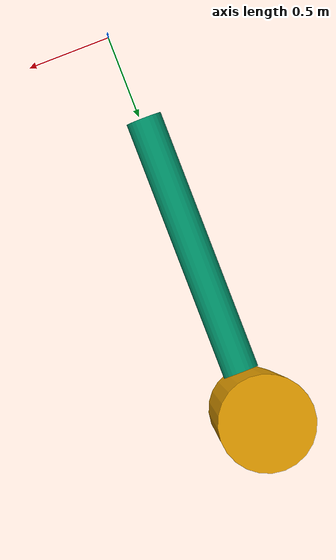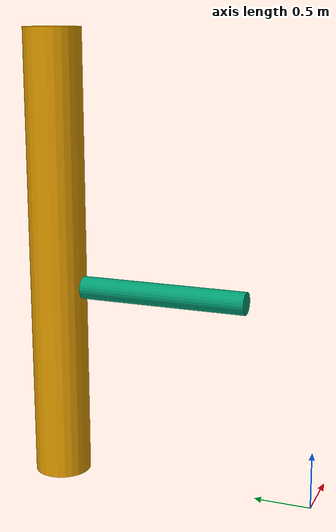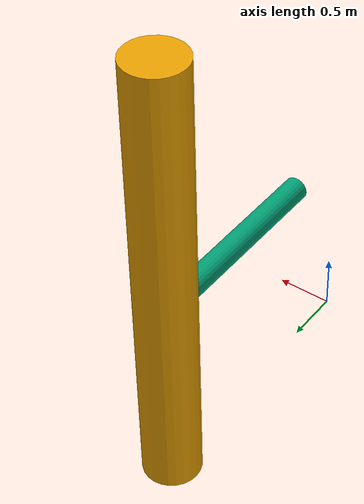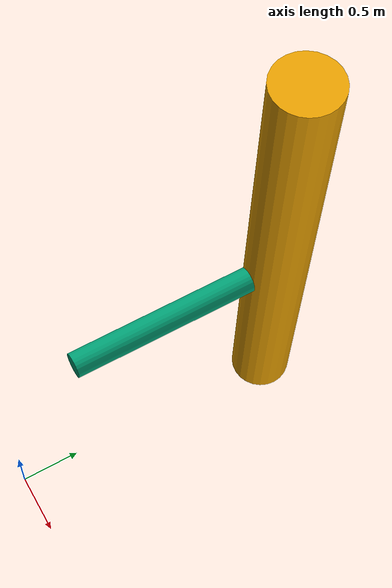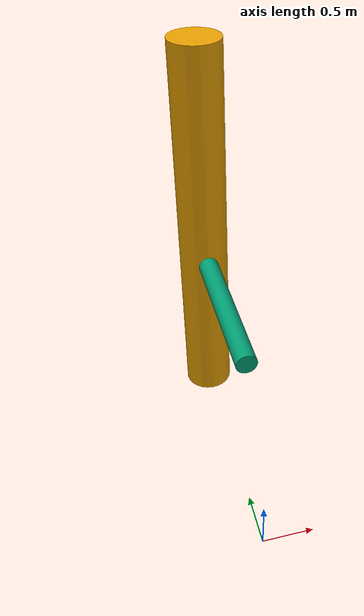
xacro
<?xml version="1.0" ?>
<robot name="vertical_obstacle" xmlns:xacro="http://www.ros.org/wiki/xacro">

  <!-- Include -->
  <xacro:include filename="$(find planar_structure)/urdf/obstacle_parameters.xacro" />
  <xacro:include filename="$(find planar_structure)/urdf/obstacle_link_joint.xacro" />

  <!-- Obstacle description -->
  <m_link_cyl name="${link_00_name}"
              origin_rpy="0 0 0" origin_xyz="0 2.35 2.0"
              mass="1000"
              ixx="800.0" ixy="0" ixz="0"
              iyy="800.0" iyz="0"
              izz="800.0"
	      radius="0.25"
	      length="4.0" />

  <m_joint name="branch_joint1" type="revolute"
           axis_xyz="1 0 0"
           origin_rpy="0 0 0" origin_xyz="0 2.1 1.75"
           parent="${link_00_name}" child="virtual_link"
           limit_e="1000" limit_l="-1.3" limit_u="1.3" limit_v="0.5"
           damping="0.01" friction="0.01" />

  <m_link_box name="virtual_link"
	      origin_rpy="0 0 0" origin_xyz="0 0 0"
              mass="0.0001"
              ixx="0.0001" ixy="0" ixz="0"
              iyy="0.0001" iyz="0"
              izz="0.0001"
              size="0.0 0.0 0.0" />

  <m_joint name="branch_joint2" type="revolute"
           axis_xyz="0 0 1"
           origin_rpy="0 0 0" origin_xyz="0 0 0"
           parent="virtual_link" child="${link_01_name}"
           limit_e="1000" limit_l="-0.3" limit_u="0.3" limit_v="0.5"
           damping="0.01" friction="0.01" />

  <m_link_cyl name="${link_01_name}"
              origin_rpy="1.57 0 0" origin_xyz="0 -0.75 0"
              mass="0.1"
              ixx="0.01" ixy="0" ixz="0"
              iyy="0.01" iyz="0"
              izz="0.01"
              radius="0.1"
	      length="1.5" />

  <!-- Macro for Torsional Joint Spring Plugin -->
  <gazebo>
    <plugin name="joint_spring1" filename="libjoint_torsional_spring_plugin.so">
      <kx>5</kx>
      <set_point>-0.045</set_point>
      <joint>branch_joint1</joint>
    </plugin>
  </gazebo>

  <gazebo>
    <plugin name="joint_spring2" filename="libjoint_torsional_spring_plugin.so">
      <kx>5</kx>
      <set_point>0.0</set_point>
      <joint>branch_joint2</joint>
    </plugin>
  </gazebo>

</robot>

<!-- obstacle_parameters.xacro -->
<robot xmlns:xacro="http://www.ros.org/wiki/xacro">
  <xacro:property name="link_00_name" value="wall" />
  <xacro:property name="link_01_name" value="branch" />
</robot>

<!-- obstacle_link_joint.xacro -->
<robot xmlns:xacro="http://www.ros.org/wiki/xacro">

  <xacro:macro name="m_joint" params="name type axis_xyz origin_rpy origin_xyz parent child limit_e limit_l limit_u limit_v damping friction">
    <joint name="${name}" type="${type}">
      <axis xyz="${axis_xyz}" />
      <limit effort="${limit_e}" lower="${limit_l}" upper="${limit_u}" velocity="${limit_v}" />
      <dynamics damping="${damping}" friction="${friction}" />
      <origin rpy="${origin_rpy}" xyz="${origin_xyz}" />
      <parent link="${parent}" />
      <child link="${child}" />
    </joint>
  </xacro:macro>

  <xacro:macro name="k_joint" params="name type axis_xyz origin_rpy origin_xyz parent child limit_e limit_l limit_u limit_v damping friction spring_k spring_ref">
    <joint name="${name}" type="${type}">
      <axis xyz="${axis_xyz}" />
      <limit effort="${limit_e}" lower="${limit_l}" upper="${limit_u}" velocity="${limit_v}" />
      <dynamics damping="${damping}" friction="${friction}" spring_reference="${spring_ref}" spring_stiffness="${spring_k}" />
      <origin rpy="${origin_rpy}" xyz="${origin_xyz}" />
      <parent link="${parent}" />
      <child link="${child}" />
    </joint>
  </xacro:macro>

  <xacro:macro name="m_link_box" params="name origin_xyz origin_rpy size mass ixx ixy ixz iyy iyz izz">
    <link name="${name}">
      <inertial>
        <mass value="${mass}" />
        <origin rpy="${origin_rpy}" xyz="${origin_xyz}" />
        <inertia ixx="${ixx}" ixy="${ixy}" ixz="${ixz}" iyy="${iyy}" iyz="${iyz}" izz="${izz}" />
      </inertial>
      <collision>
        <origin rpy="${origin_rpy}" xyz="${origin_xyz}" />
        <geometry>
          <box size="${size}" />
        </geometry>
      </collision>
      <visual>
        <origin rpy="${origin_rpy}" xyz="${origin_xyz}" />
        <geometry>
          <box size="${size}" />
        </geometry>
      </visual>
    </link>
  </xacro:macro>

  <xacro:macro name="m_link_cyl" params="name origin_xyz origin_rpy radius length mass ixx ixy ixz iyy iyz izz">
    <link name="${name}">
      <inertial>
        <mass value="${mass}" />
        <origin rpy="${origin_rpy}" xyz="${origin_xyz}" />
        <inertia ixx="${ixx}" ixy="${ixy}" ixz="${ixz}" iyy="${iyy}" iyz="${iyz}" izz="${izz}" />
      </inertial>
      <collision>
        <origin rpy="${origin_rpy}" xyz="${origin_xyz}" />
        <geometry>
	  <cylinder radius="${radius}" length="${length}" />
        </geometry>
      </collision>
      <visual>
        <origin rpy="${origin_rpy}" xyz="${origin_xyz}" />
        <geometry>
          <cylinder radius="${radius}" length="${length}" />
        </geometry>
      </visual>
    </link>
  </xacro:macro>

  <xacro:macro name="m_link_mesh" params="name origin_xyz origin_rpy meshfile meshscale mass ixx ixy ixz iyy iyz izz">
    <link name="${name}">
      <inertial>
        <mass value="${mass}" />
        <origin rpy="${origin_rpy}" xyz="${origin_xyz}" />
        <inertia ixx="${ixx}" ixy="${ixy}" ixz="${ixz}" iyy="${iyy}" iyz="${iyz}" izz="${izz}" />
      </inertial>
      <collision>
        <origin rpy="${origin_rpy}" xyz="${origin_xyz}" />
        <geometry>
          <mesh filename="${meshfile}" scale="${meshscale}"/>
        </geometry>
      </collision>
      <visual>
        <origin rpy="${origin_rpy}" xyz="${origin_xyz}" />
        <geometry>
          <mesh filename="${meshfile}" scale="${meshscale}"/>
        </geometry>
      </visual>
    </link>
  </xacro:macro>

  <xacro:macro name="m_link_virtual" params="name">
    <link name="${name}">
    </link>
  </xacro:macro>

</robot>
